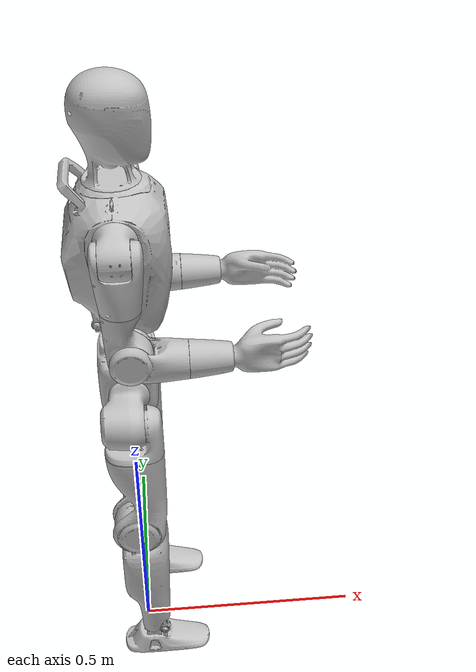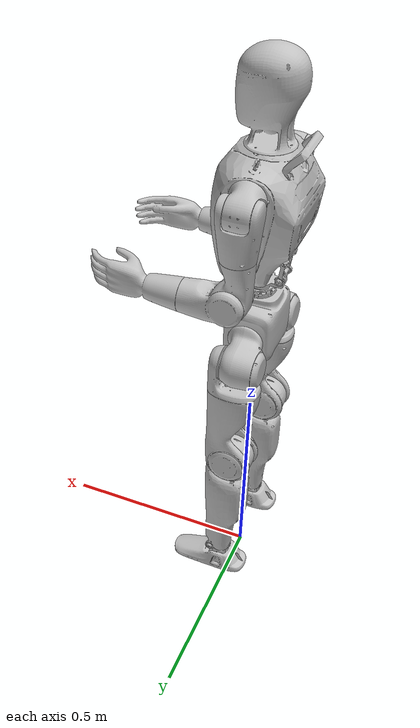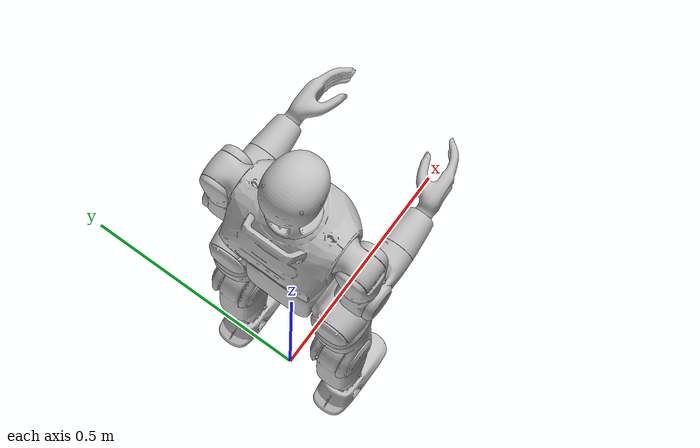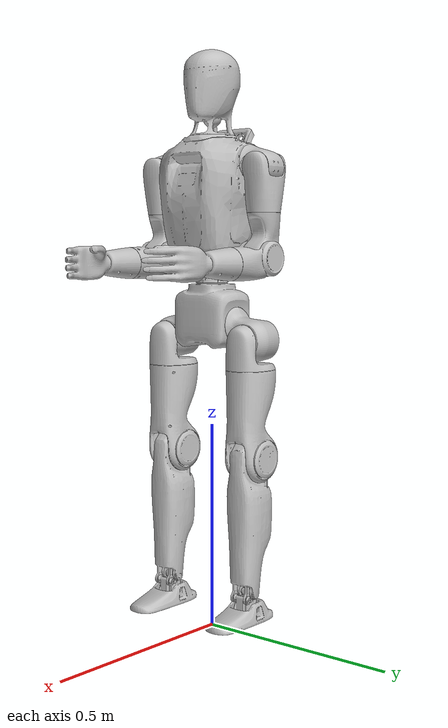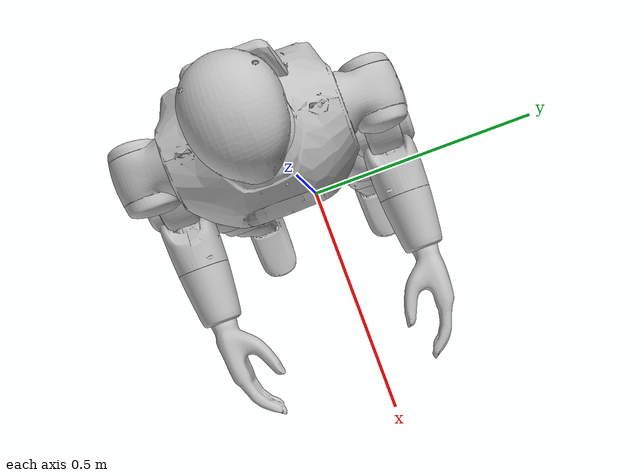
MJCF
<mujoco model="LRS-XURDF0210QJ">
  <compiler angle="radian" meshdir="./meshes/"/>
  <default>
    <!-- armature uses the motor table's equivalent output-side inertia -->
    <default class="motor_58p">
      <joint damping="0.05" armature="0.002746621" frictionloss="0.2"/>
    </default>
    <default class="motor_88p_14_3">
      <joint damping="0.05" armature="0.041124596" frictionloss="0.2"/>
    </default>
    <default class="motor_88p_22_5">
      <joint damping="0.05" armature="0.016712311" frictionloss="0.2"/>
    </default>
  </default>

  <asset>
    <mesh name="pelvis" content_type="model/stl" file="pelvis.STL"/>
    <mesh name="waist_yaw_link" content_type="model/stl" file="waist_yaw_link.STL"/>
    <mesh name="waist_roll_link" content_type="model/stl" file="waist_roll_link.STL"/>
    <mesh name="waist_pitch_link" content_type="model/stl" file="waist_pitch_link.STL"/>
    <mesh name="head_link" content_type="model/stl" file="head_link.STL"/>
    <mesh name="left_shoulder_pitch_link" content_type="model/stl" file="left_shoulder_pitch_link.STL"/>
    <mesh name="left_shoulder_roll_link" content_type="model/stl" file="left_shoulder_roll_link.STL"/>
    <mesh name="left_shoulder_yaw_link" content_type="model/stl" file="left_shoulder_yaw_link.STL"/>
    <mesh name="left_elbow_link" content_type="model/stl" file="left_elbow_link.STL"/>
    <mesh name="left_wrist_roll_link" content_type="model/stl" file="left_wrist_roll_link.STL"/>
    <mesh name="right_shoulder_pitch_link" content_type="model/stl" file="right_shoulder_pitch_link.STL"/>
    <mesh name="right_shoulder_roll_link" content_type="model/stl" file="right_shoulder_roll_link.STL"/>
    <mesh name="right_shoulder_yaw_link" content_type="model/stl" file="right_shoulder_yaw_link.STL"/>
    <mesh name="right_elbow_link" content_type="model/stl" file="right_elbow_link.STL"/>
    <mesh name="right_wrist_roll_link" content_type="model/stl" file="right_wrist_roll_link.STL"/>
    <mesh name="left_hip_pitch_link" content_type="model/stl" file="left_hip_pitch_link.STL"/>
    <mesh name="left_hip_roll_link" content_type="model/stl" file="left_hip_roll_link.STL"/>
    <mesh name="left_hip_yaw_link" content_type="model/stl" file="left_hip_yaw_link.STL"/>
    <mesh name="left_knee_link" content_type="model/stl" file="left_knee_link.STL"/>
    <mesh name="left_ankle_pitch_link" content_type="model/stl" file="left_ankle_pitch_link.STL"/>
    <mesh name="left_ankle_roll_link" content_type="model/stl" file="left_ankle_roll_link.STL"/>
    <mesh name="right_hip_pitch_link" content_type="model/stl" file="right_hip_pitch_link.STL"/>
    <mesh name="right_hip_roll_link" content_type="model/stl" file="left_hip_roll_link.STL"/>
    <mesh name="right_hip_yaw_link" content_type="model/stl" file="right_hip_yaw_link.STL"/>
    <mesh name="right_knee_link" content_type="model/stl" file="right_knee_link.STL"/>
    <mesh name="right_ankle_pitch_link" content_type="model/stl" file="right_ankle_pitch_link.STL"/>
    <mesh name="right_ankle_roll_link" content_type="model/stl" file="right_ankle_roll_link.STL"/>
  </asset>

  <worldbody>
    <body name="pelvis" pos="0 0 0.86">
      <inertial pos="-0.00103313928053411 0.000382585123602887 -0.0864613171896089" mass="1.84951140169722" diaginertia="0.00320766832900481 0.00259257440658102 0.00273340858466264" />
      <joint name="float_base_joint" type="free" limited="false" actuatorfrclimited="false" />
      <geom type="mesh" contype="0" conaffinity="0" group="1" density="0" rgba="0.752941 0.752941 0.752941 1" mesh="pelvis"/>
      <geom size="0.06 0.075 0.06" pos="0 0 -0.1" type="box" contype="1" conaffinity="6" group="4" rgba="0.752941 0.752941 0.752941 1"/>
      <site name="imu" size="0.01" pos="0 0 0"/>
      <body name="waist_yaw_link">
        <inertial pos="-0.0007961 7.03e-05 -0.0865232" quat="0.979661 -0.200611 -0.000832866 -0.00433356" mass="4.13424" diaginertia="0.0144179 0.00984534 0.00972921"/>
        <geom type="mesh" contype="0" conaffinity="0" group="1" density="0" rgba="0.752941 0.752941 0.752941 1" mesh="waist_yaw_link"/>
        <body name="waist_roll_link" pos="0 -1.9533e-05 0.041">
          <inertial pos="0 0 0" quat="0.5 0.5 -0.5 0.5" mass="0.0507195" diaginertia="4.5e-06 3.5e-06 3.1e-06"/>
          <geom type="mesh" contype="0" conaffinity="0" group="1" density="0" rgba="0.752941 0.752941 0.752941 1" mesh="waist_roll_link"/>
            <body name="waist_pitch_link">
              <inertial pos="-0.0001923 0.0004287 0.154787" quat="0.999415 0.00229732 -0.0337885 -0.00474257" mass="9.22281" diaginertia="0.0931107 0.0759442 0.0534725"/>
              <geom type="mesh" contype="0" conaffinity="0" group="1" density="0" rgba="0.752941 0.752941 0.752941 1" mesh="waist_pitch_link"/>
              <geom size="0.1 0.1125 0.15" pos="0 -1.9533e-05 0.151" type="box" contype="1" conaffinity="6" group="4" rgba="0.752941 0.752941 0.752941 1"/>
              <body name="torso_link" pos="0 0 0.2"/>
              <body name="head_link" pos="-0.001747 0 0.28638">
              <inertial pos="0.0070707 9.67e-05 0.0796452" quat="0.706808 0.0506131 0.0503792 0.703792" mass="0.972408" diaginertia="0.00353101 0.00326049 0.001679"/>
              <geom type="mesh" contype="0" conaffinity="0" group="1" density="0" rgba="0.752941 0.752941 0.752941 1" mesh="head_link"/>
              <geom size="0.075 0.06 0.075" pos="-0.001747 -1.9533e-05 0.12738" type="box" contype="1" conaffinity="6" group="4" rgba="0.752941 0.752941 0.752941 1"/>
            </body>
            <body name="left_shoulder_pitch_link" pos="-1.4518e-05 0.1136 0.22528">
              <inertial pos="0.0032988 0.0419974 -0.011257" quat="0.440208 0.158008 -0.398881 0.788761" mass="0.602769" diaginertia="0.000439986 0.000432308 0.000399806"/>
              <geom type="mesh" contype="0" conaffinity="0" group="1" density="0" rgba="0.752941 0.752941 0.752941 1" mesh="left_shoulder_pitch_link"/>
              <body name="left_shoulder_roll_link" pos="0.027515 0.044 -0.012014">
                <inertial pos="-0.0261291 0.0004428 -0.0682116" quat="0.715525 0.0877205 0.105466 0.684987" mass="0.744823" diaginertia="0.00115205 0.00102993 0.000621522"/>
                <geom type="mesh" contype="0" conaffinity="0" group="1" density="0" rgba="0.752941 0.752941 0.752941 1" mesh="left_shoulder_roll_link"/>
                <body name="left_shoulder_yaw_link" pos="-0.0275 -1.4394e-05 -0.10459">
                  <inertial pos="0.0090831 0.0029894 -0.0928872" quat="0.655121 -0.0547316 -0.0775564 0.749538" mass="0.703258" diaginertia="0.00112068 0.00109668 0.000476437"/>
                  <geom type="mesh" contype="0" conaffinity="0" group="1" density="0" rgba="0.752941 0.752941 0.752941 1" mesh="left_shoulder_yaw_link"/>
                  <body name="left_elbow_link" pos="0.011985 0.027515 -0.1057" quat="0.707105 0 -0.707108 0">
                    <inertial pos="-0.0108255 -0.024849 -0.0711105" quat="0.99288 -0.105131 0.0555326 -0.00730611" mass="0.726791" diaginertia="0.00128016 0.00120871 0.000587633"/>
                    <geom type="mesh" contype="0" conaffinity="0" group="1" density="0" rgba="0.752941 0.752941 0.752941 1" mesh="left_elbow_link"/>
                    <body name="left_wrist_roll_link" pos="-0.012 -0.0275 -0.1097">
                      <inertial pos="0.0034094 -0.0042461 -0.107948" quat="0.832563 -0.0441987 0.00720885 0.552117" mass="0.414837" diaginertia="0.0016552 0.00158168 0.000268213"/>
                      <geom type="mesh" contype="0" conaffinity="0" group="1" density="0" rgba="0.752941 0.752941 0.752941 1" mesh="left_wrist_roll_link"/>
                    </body>
                  </body>
                </body>
              </body>
            </body>
            <body name="right_shoulder_pitch_link" pos="-1.4518e-05 -0.1136 0.22528">
              <inertial pos="0.0033332 -0.040993 -0.0112332" quat="0.154589 0.436357 -0.789753 0.402473" mass="0.601977" diaginertia="0.000439051 0.000431963 0.000399087"/>
              <geom type="mesh" contype="0" conaffinity="0" group="1" density="0" rgba="0.752941 0.752941 0.752941 1" mesh="right_shoulder_pitch_link"/>
              <body name="right_shoulder_roll_link" pos="0.027515 -0.043 -0.012014">
                <inertial pos="-0.0261296 -0.0004619 -0.0682249" quat="0.684804 0.105671 0.0874933 0.715697" mass="0.744116" diaginertia="0.00115197 0.00102962 0.000621211"/>
                <geom type="mesh" contype="0" conaffinity="0" group="1" density="0" rgba="0.752941 0.752941 0.752941 1" mesh="right_shoulder_roll_link"/>
                <body name="right_shoulder_yaw_link" pos="-0.0275 1.4394e-05 -0.10459">
                  <inertial pos="0.0090975 -0.003017 -0.0928735" quat="0.744472 -0.0780877 -0.0541174 0.660859" mass="0.702485" diaginertia="0.00112021 0.001096 0.000475589"/>
                  <geom type="mesh" contype="0" conaffinity="0" group="1" density="0" rgba="0.752941 0.752941 0.752941 1" mesh="right_shoulder_yaw_link"/>
                  <body name="right_elbow_link" pos="0.011985 -0.027515 -0.1057" quat="0.707105 0 -0.707108 0">
                    <inertial pos="-0.0108481 0.0248505 -0.0711669" quat="0.992918 0.10462 0.0555112 0.00929097" mass="0.724838" diaginertia="0.00127619 0.00120386 0.000585547"/>
                    <geom type="mesh" contype="0" conaffinity="0" group="1" density="0" rgba="0.752941 0.752941 0.752941 1" mesh="right_elbow_link"/>
                    <body name="right_wrist_roll_link" pos="-0.012 0.0275 -0.1097">
                      <inertial pos="0.003595 0.0050066 -0.107741" quat="0.565352 0.00993484 -0.0486741 0.823352" mass="0.414709" diaginertia="0.00167211 0.00159334 0.000267442"/>
                      <geom type="mesh" contype="0" conaffinity="0" group="1" density="0" rgba="0.752941 0.752941 0.752941 1" mesh="right_wrist_roll_link"/>
                    </body>
                  </body>
                </body>
              </body>
            </body>
          </body>
        </body>
      </body>
      <body name="left_hip_pitch_link" pos="0 0.07298 -0.1131">
        <inertial pos="-0.0113615 0.0470713 -0.0342248" quat="0.919133 0.355089 0.162199 -0.0528993" mass="1.32446" diaginertia="0.00146172 0.00139988 0.0010828"/>
        <joint name="left_hip_pitch_joint" pos="0 0 0" axis="0 1 0" class="motor_88p_22_5" range="-2.69 2.69" actuatorfrcrange="-140 140"/>
        <geom type="mesh" contype="0" conaffinity="0" group="1" density="0" rgba="0.752941 0.752941 0.752941 1" mesh="left_hip_pitch_link"/>
        <body name="left_hip_roll_link" pos="0.019 0.05008 -0.036909">
          <inertial pos="0.0045843 2.09e-05 -0.0296417" quat="0.968845 0 0.247668 0" mass="0.34034" diaginertia="0.000505551 0.0004944 0.000232649"/>
          <joint name="left_hip_roll_joint" pos="0 0 0" axis="1 0 0" class="motor_88p_14_3" range="-0.52 2.97" actuatorfrcrange="-90 90"/>
          <geom type="mesh" contype="0" conaffinity="0" group="1" density="0" rgba="0.752941 0.752941 0.752941 1" mesh="left_hip_roll_link"/>
          <geom size="0.06 0.04 0.1" pos="-0.016 0 -0.1" type="box" contype="1" conaffinity="6" group="4" rgba="0.752941 0.752941 0.752941 1"/>
          <body name="left_hip_yaw_link" pos="-0.016491 0 -0.066991">
            <inertial pos="0.003642 0.007695 -0.0796255" quat="0.621261 0.0394935 -0.066286 0.779796" mass="2.09922" diaginertia="0.0113902 0.0112647 0.00236318"/>
            <joint name="left_hip_yaw_joint" pos="0 0 0" axis="0 0 1" class="motor_88p_14_3" range="-2.76 2.76" actuatorfrcrange="-90 90"/>
            <geom type="mesh" contype="0" conaffinity="0" group="1" density="0" rgba="0.752941 0.752941 0.752941 1" mesh="left_hip_yaw_link"/>
            <body name="left_knee_link" pos="-0.0025064 0.02402 -0.21064">
              <inertial pos="0.0064688 -0.0264025 -0.102822" quat="0.728248 -0.0100789 -0.0310592 0.684535" mass="3.49098" diaginertia="0.0328485 0.0324447 0.0027993"/>
              <joint name="left_knee_joint" pos="0 0 0" axis="0 1 0" class="motor_88p_22_5" range="-0.09 2.53" actuatorfrcrange="-140 140"/>
              <geom type="mesh" contype="0" conaffinity="0" group="1" density="0" rgba="0.752941 0.752941 0.752941 1" mesh="left_knee_link"/>
              <geom size="0.05 0.0375 0.16" pos="0.01 -0.025 -0.15" type="box" contype="1" conaffinity="6" group="4" rgba="0.752941 0.752941 0.752941 1"/>
              <body name="left_ankle_pitch_link" pos="0.014 -0.024 -0.3225">
                <inertial pos="0 0 -0.0072252" mass="0.0528192" diaginertia="6.7e-06 5.9e-06 3.3e-06"/>
                <joint name="left_ankle_pitch_joint" pos="0 0 0" axis="0 1 0" class="motor_58p" range="-0.52 0.87" actuatorfrcrange="-25 25"/>
                <geom type="mesh" contype="0" conaffinity="0" group="1" density="0" rgba="0.752941 0.752941 0.752941 1" mesh="left_ankle_pitch_link"/>
                <body name="left_ankle_roll_link" pos="0 0 -0.0165">
                  <inertial pos="0.0154117 5.7e-06 -0.0291423" quat="0.484591 0.515035 0.514902 0.484547" mass="0.480722" diaginertia="0.0009044 0.000839975 0.000332225"/>
                  <joint name="left_ankle_roll_joint" pos="0 0 0" axis="1 0 0" class="motor_58p" range="-0.26 0.26" actuatorfrcrange="-25 25"/>
                  <geom type="mesh" contype="0" conaffinity="0" group="1" density="0" rgba="0.752941 0.752941 0.752941 1" mesh="left_ankle_roll_link"/>
                  <geom size="0.09 0.04 0.01" pos="0.02 0 -0.0425" type="box" contype="1" conaffinity="6" group="4" rgba="0.752941 0.752941 0.752941 1"/>
                </body>
              </body>
            </body>
          </body>
        </body>
      </body>
      <body name="right_hip_pitch_link" pos="0 -0.07302 -0.1131">
        <inertial pos="-0.0113616 -0.0470894 -0.0342258" quat="0.919155 -0.355384 0.161893 0.0514442" mass="1.32442" diaginertia="0.00146183 0.00139911 0.00108355"/>
        <joint name="right_hip_pitch_joint" pos="0 0 0" axis="0 1 0" class="motor_88p_22_5" range="-2.69 2.69" actuatorfrcrange="-140 140"/>
        <geom type="mesh" contype="0" conaffinity="0" group="1" density="0" rgba="0.752941 0.752941 0.752941 1" mesh="right_hip_pitch_link"/>
        <body name="right_hip_roll_link" pos="0.019 -0.05008 -0.036909">
          <inertial pos="0.0081543 0.0053028 -0.0351489" quat="0.968845 0 0.247668 0" mass="0.34034" diaginertia="0.000505551 0.0004944 0.000232649"/>
          <joint name="right_hip_roll_joint" pos="0 0 0" axis="1 0 0" class="motor_88p_14_3" range="-2.97 0.52" actuatorfrcrange="-90 90"/>
          <geom type="mesh" contype="0" conaffinity="0" group="1" density="0" rgba="0.752941 0.752941 0.752941 1" mesh="right_hip_roll_link"/>
          <geom size="0.06 0.04 0.1" pos="-0.016 0 -0.1" type="box" contype="1" conaffinity="6" group="4" rgba="0.752941 0.752941 0.752941 1"/>
          <body name="right_hip_yaw_link" pos="-0.016491 0 -0.066991">
            <inertial pos="0.0036411 -0.0076676 -0.0796285" quat="0.777885 -0.0661079 0.0396626 0.62366" mass="2.09923" diaginertia="0.01139 0.0112653 0.00236323"/>
            <joint name="right_hip_yaw_joint" pos="0 0 0" axis="0 0 1" class="motor_88p_14_3" range="-2.76 2.76" actuatorfrcrange="-90 90"/>
            <geom type="mesh" contype="0" conaffinity="0" group="1" density="0" rgba="0.752941 0.752941 0.752941 1" mesh="right_hip_yaw_link"/>
            <body name="right_knee_link" pos="-0.0025064 -0.02398 -0.21064">
              <inertial pos="0.0064699 0.0264002 -0.102829" quat="0.683693 -0.0310624 -0.010066 0.729039" mass="3.49108" diaginertia="0.0328558 0.0324517 0.00279947"/>
              <joint name="right_knee_joint" pos="0 0 0" axis="0 1 0" class="motor_88p_22_5" range="-0.09 2.53" actuatorfrcrange="-140 140"/>
              <geom type="mesh" contype="0" conaffinity="0" group="1" density="0" rgba="0.752941 0.752941 0.752941 1" mesh="right_knee_link"/>
              <geom size="0.05 0.0375 0.16" pos="0.01 0.025 -0.15" type="box" contype="1" conaffinity="6" group="4" rgba="0.752941 0.752941 0.752941 1"/>
              <body name="right_ankle_pitch_link" pos="0.014 0.024 -0.3225">
                <inertial pos="0 0 -0.0072252" mass="0.0528192" diaginertia="6.7e-06 5.9e-06 3.3e-06"/>
                <joint name="right_ankle_pitch_joint" pos="0 0 0" axis="0 1 0" class="motor_58p" range="-0.52 0.87" actuatorfrcrange="-25 25"/>
                <geom type="mesh" contype="0" conaffinity="0" group="1" density="0" rgba="0.752941 0.752941 0.752941 1" mesh="right_ankle_pitch_link"/>
                <body name="right_ankle_roll_link" pos="0 0 -0.0165">
                  <inertial pos="0.0154117 5.7e-06 -0.0291596" quat="0.484553 0.515071 0.514938 0.484509" mass="0.480722" diaginertia="0.000904 0.000839986 0.000331814"/>
                  <joint name="right_ankle_roll_joint" pos="0 0 0" axis="1 0 0" class="motor_58p" range="-0.26 0.26" actuatorfrcrange="-25 25"/>
                  <geom type="mesh" contype="0" conaffinity="0" group="1" density="0" rgba="0.752941 0.752941 0.752941 1" mesh="right_ankle_roll_link"/>

                  <geom size="0.09 0.04 0.01" pos="0.02 0 -0.0425" type="box" contype="1" conaffinity="6" group="4" rgba="0.752941 0.752941 0.752941 1"/>
                </body>
              </body>
            </body>
          </body>
        </body>
      </body>
    </body>
  </worldbody>

  <actuator>
    <motor name="left_hip_pitch_joint" joint="left_hip_pitch_joint" ctrllimited="true" ctrlrange="-140 140"/>
    <motor name="left_hip_roll_joint" joint="left_hip_roll_joint" ctrllimited="true" ctrlrange="-90 90"/>
    <motor name="left_hip_yaw_joint" joint="left_hip_yaw_joint" ctrllimited="true" ctrlrange="-90 90"/>
    <motor name="left_knee_joint" joint="left_knee_joint" ctrllimited="true" ctrlrange="-140 140"/>
    <motor name="left_ankle_pitch_joint" joint="left_ankle_pitch_joint" ctrllimited="true" ctrlrange="-25 25"/>
    <motor name="left_ankle_roll_joint" joint="left_ankle_roll_joint" ctrllimited="true" ctrlrange="-25 25"/>
    <motor name="right_hip_pitch_joint" joint="right_hip_pitch_joint" ctrllimited="true" ctrlrange="-140 140"/>
    <motor name="right_hip_roll_joint" joint="right_hip_roll_joint" ctrllimited="true" ctrlrange="-90 90"/>
    <motor name="right_hip_yaw_joint" joint="right_hip_yaw_joint" ctrllimited="true" ctrlrange="-90 90"/>
    <motor name="right_knee_joint" joint="right_knee_joint" ctrllimited="true" ctrlrange="-140 140"/>
    <motor name="right_ankle_pitch_joint" joint="right_ankle_pitch_joint" ctrllimited="true" ctrlrange="-25 25"/>
    <motor name="right_ankle_roll_joint" joint="right_ankle_roll_joint" ctrllimited="true" ctrlrange="-25 25"/>
  </actuator>

  <sensor>
    <jointpos name="left_hip_pitch_joint_pos" joint="left_hip_pitch_joint"/>
    <jointpos name="left_hip_roll_joint_pos" joint="left_hip_roll_joint"/>
    <jointpos name="left_hip_yaw_joint_pos" joint="left_hip_yaw_joint"/>
    <jointpos name="left_knee_joint_pos" joint="left_knee_joint"/>
    <jointpos name="left_ankle_pitch_joint_pos" joint="left_ankle_pitch_joint"/>
    <jointpos name="left_ankle_roll_joint_pos" joint="left_ankle_roll_joint"/>
    <jointpos name="right_hip_pitch_joint_pos" joint="right_hip_pitch_joint"/>
    <jointpos name="right_hip_roll_joint_pos" joint="right_hip_roll_joint"/>
    <jointpos name="right_hip_yaw_joint_pos" joint="right_hip_yaw_joint"/>
    <jointpos name="right_knee_joint_pos" joint="right_knee_joint"/>
    <jointpos name="right_ankle_pitch_joint_pos" joint="right_ankle_pitch_joint"/>
    <jointpos name="right_ankle_roll_joint_pos" joint="right_ankle_roll_joint"/>
    <jointvel name="left_hip_pitch_joint_vel" joint="left_hip_pitch_joint"/>
    <jointvel name="left_hip_roll_joint_vel" joint="left_hip_roll_joint"/>
    <jointvel name="left_hip_yaw_joint_vel" joint="left_hip_yaw_joint"/>
    <jointvel name="left_knee_joint_vel" joint="left_knee_joint"/>
    <jointvel name="left_ankle_pitch_joint_vel" joint="left_ankle_pitch_joint"/>
    <jointvel name="left_ankle_roll_joint_vel" joint="left_ankle_roll_joint"/>
    <jointvel name="right_hip_pitch_joint_vel" joint="right_hip_pitch_joint"/>
    <jointvel name="right_hip_roll_joint_vel" joint="right_hip_roll_joint"/>
    <jointvel name="right_hip_yaw_joint_vel" joint="right_hip_yaw_joint"/>
    <jointvel name="right_knee_joint_vel" joint="right_knee_joint"/>
    <jointvel name="right_ankle_pitch_joint_vel" joint="right_ankle_pitch_joint"/>
    <jointvel name="right_ankle_roll_joint_vel" joint="right_ankle_roll_joint"/>
    <jointactuatorfrc name="left_hip_pitch_joint_torque" joint="left_hip_pitch_joint"/>
    <jointactuatorfrc name="left_hip_roll_joint_torque" joint="left_hip_roll_joint"/>
    <jointactuatorfrc name="left_hip_yaw_joint_torque" joint="left_hip_yaw_joint"/>
    <jointactuatorfrc name="left_knee_joint_torque" joint="left_knee_joint"/>
    <jointactuatorfrc name="left_ankle_pitch_joint_torque" joint="left_ankle_pitch_joint"/>
    <jointactuatorfrc name="left_ankle_roll_joint_torque" joint="left_ankle_roll_joint"/>
    <jointactuatorfrc name="right_hip_pitch_joint_torque" joint="right_hip_pitch_joint"/>
    <jointactuatorfrc name="right_hip_roll_joint_torque" joint="right_hip_roll_joint"/>
    <jointactuatorfrc name="right_hip_yaw_joint_torque" joint="right_hip_yaw_joint"/>
    <jointactuatorfrc name="right_knee_joint_torque" joint="right_knee_joint"/>
    <jointactuatorfrc name="right_ankle_pitch_joint_torque" joint="right_ankle_pitch_joint"/>
    <jointactuatorfrc name="right_ankle_roll_joint_torque" joint="right_ankle_roll_joint"/>
    <framequat name="imu_quat" objtype="site" objname="imu"/>
    <gyro name="imu_gyro" site="imu"/>
    <accelerometer name="imu_acc" site="imu"/>
    <framepos name="frame_pos" objtype="site" objname="imu"/>
    <framelinvel name="frame_vel" objtype="site" objname="imu"/>
  </sensor>
</mujoco>
